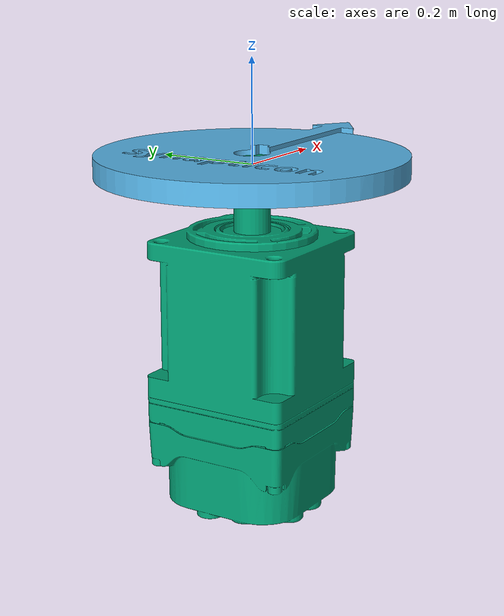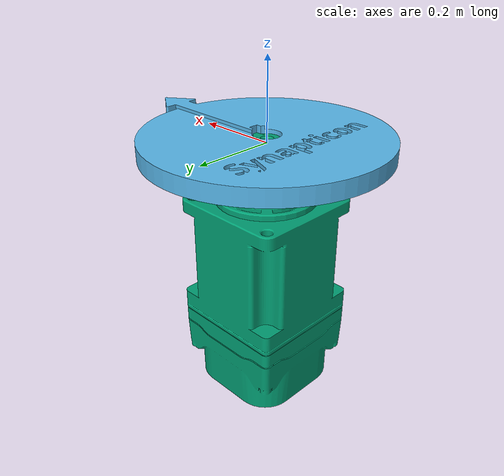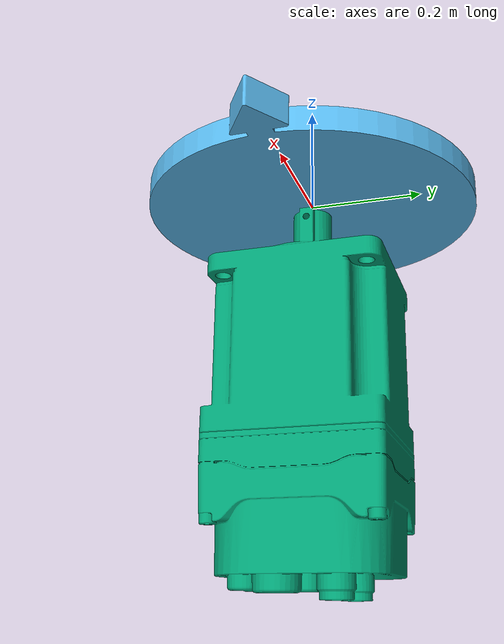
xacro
<?xml version="1.0"?>
<robot xmlns:xacro="http://www.ros.org/wiki/xacro" name="single_dof">
  <xacro:arg name="prefix" default="" />
  <xacro:arg name="eth_device" default="" />
  <xacro:arg name="joint1_mechanical_reduction" default="1.0" />

  <xacro:include filename="$(find synapticon_description)/urdf/example_synapticon.macro.xacro" />

  <xacro:include filename="$(find synapticon_description)/ros2_control/single_dof.ros2_control.xacro" />

  <link name="world"/>

  <xacro:single_dof parent="world" prefix="$(arg prefix)">
    <origin xyz="0 0 0" rpy="0 0 0" />
  </xacro:single_dof>

  <xacro:single_dof_ros2_control name="SingleDofRos2Control" prefix="$(arg prefix)" eth_device="$(arg eth_device)" joint1_mechanical_reduction="$(arg joint1_mechanical_reduction)" />

</robot>

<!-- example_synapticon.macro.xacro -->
<robot xmlns:xacro="http://www.ros.org/wiki/xacro">
  <xacro:macro name="single_dof" params="parent prefix *origin">
    <!-- Constants for robot dimensions -->
    <xacro:property name="axel_offset" value="0.00" />

    <!-- Base Joint -->
    <joint name="${prefix}base_joint" type="fixed">
      <xacro:insert_block name="origin" />
      <parent link="${parent}"/>
      <child link="${prefix}base_link" />
    </joint>

    <!-- Base Link with NEMA 17 Stepper Motor -->
    <link name="${prefix}base_link">
      <visual>
        <origin xyz="0 0 0" rpy="0 0 0"/>
        <geometry>
          <mesh filename="package://synapticon_ros2_control/meshes/flywheel.stl" scale="0.005 0.005 0.005"/>
        </geometry>
      </visual>
      <collision>
        <origin xyz="0 0 0" rpy="0 0 0"/>
        <geometry>
          <mesh filename="package://synapticon_ros2_control/meshes/flywheel.stl" scale="0.005 0.005 0.005"/>
        </geometry>
      </collision>
    </link>

    <!-- Rotational Joint -->
    <joint name="${prefix}joint1" type="continuous">
      <parent link="${prefix}base_link"/>
      <child link="${prefix}link1"/>
      <origin xyz="0 0 0" rpy="0 0 0"/>
      <axis xyz="0 0 1"/>
      <dynamics damping="0.7"/>
      <limit effort="100" velocity="1.0"/>
    </joint>

    <!-- Link1 with Flywheel -->
    <link name="${prefix}link1">
      <visual>
        <origin xyz="0 0 0" rpy="0 0 0"/>
        <geometry>
          <mesh filename="package://synapticon_ros2_control/meshes/motor.stl" scale="0.005 0.005 0.005"/>
        </geometry>
      </visual>
      <collision>
        <origin xyz="0 0 0" rpy="0 0 0"/>
        <geometry>
          <mesh filename="package://synapticon_ros2_control/meshes/motor.stl" scale="0.005 0.005 0.005"/>
        </geometry>
      </collision>
    </link>
  </xacro:macro>
</robot>
